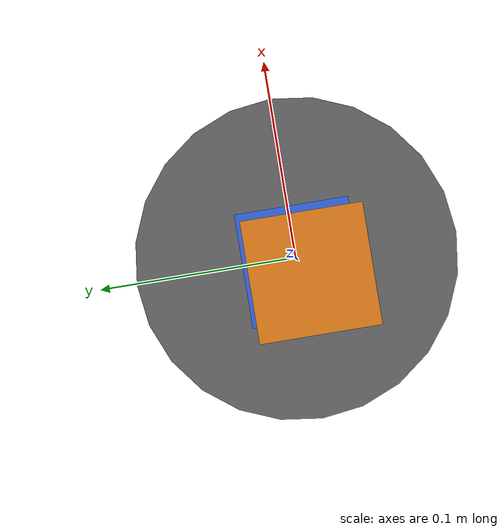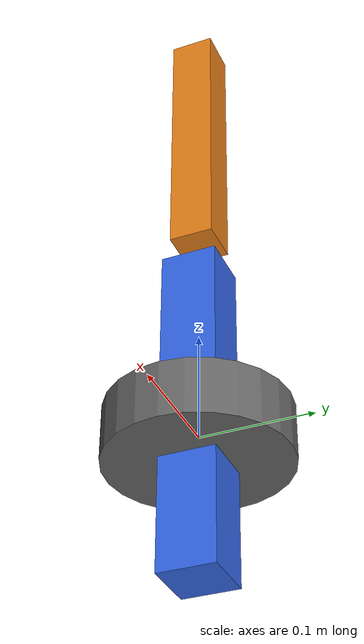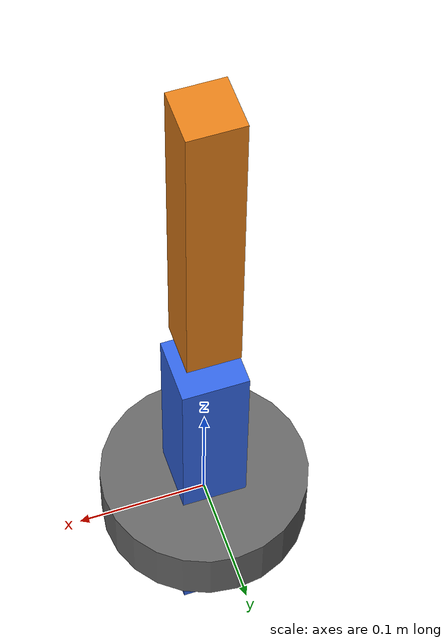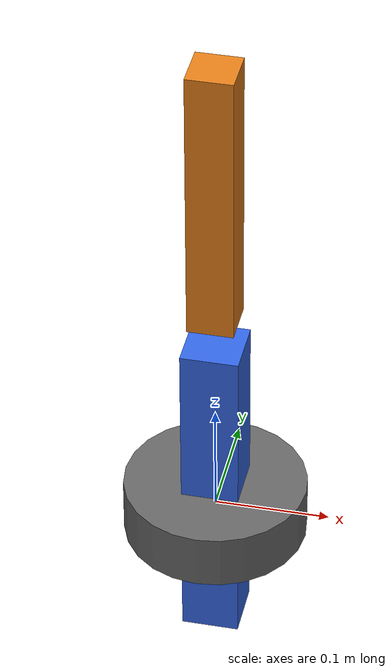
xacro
<?xml version="1.0"?>
<robot name="sample_arm" xmlns:xacro="http://www.ros.org/wiki/xacro">
  <link name="base_link">
    <visual>
      <origin xyz="0.0 0.0 0.0" rpy="0.0 0.0 0.0" />
      <geometry>
        <cylinder radius="0.08" length="0.05" />
      </geometry>
      <material name="base_grey">
        <color rgba="0.4 0.4 0.4 1.0" />
      </material>
    </visual>
    <collision>
      <origin xyz="0.0 0.0 0.0" rpy="0.0 0.0 0.0" />
      <geometry>
        <cylinder radius="0.08" length="0.05" />
      </geometry>
    </collision>
    <inertial>
      <origin xyz="0.0 0.0 0.0" rpy="0 0 0" />
      <mass value="1.5" />
      <inertia ixx="0.004" iyy="0.004" izz="0.006" ixy="0.0" ixz="0.0" iyz="0.0" />
    </inertial>
  </link>
  <link name="upper_arm">
    <visual>
      <origin xyz="0.0 0.0 0.0" rpy="0.0 0.0 0.0" />
      <geometry>
        <box size="0.05 0.05 0.3" />
      </geometry>
      <material name="arm_blue">
        <color rgba="0.2 0.4 0.9 1.0" />
      </material>
    </visual>
    <collision>
      <origin xyz="0.0 0.0 0.0" rpy="0.0 0.0 0.0" />
      <geometry>
        <box size="0.05 0.05 0.3" />
      </geometry>
    </collision>
    <inertial>
      <origin xyz="0.0 0.0 0.15" rpy="0 0 0" />
      <mass value="0.8" />
      <inertia ixx="0.006" iyy="0.006" izz="0.0007" ixy="0.0" ixz="0.0" iyz="0.0" />
    </inertial>
  </link>
  <link name="forearm">
    <visual>
      <origin xyz="0.0 0.0 0.0" rpy="0.0 0.0 0.0" />
      <geometry>
        <box size="0.04 0.04 0.25" />
      </geometry>
      <material name="arm_orange">
        <color rgba="0.9 0.5 0.1 1.0" />
      </material>
    </visual>
    <collision>
      <origin xyz="0.0 0.0 0.0" rpy="0.0 0.0 0.0" />
      <geometry>
        <box size="0.04 0.04 0.25" />
      </geometry>
    </collision>
    <inertial>
      <origin xyz="0.0 0.0 0.125" rpy="0 0 0" />
      <mass value="0.4" />
      <inertia ixx="0.002" iyy="0.002" izz="0.0003" ixy="0.0" ixz="0.0" iyz="0.0" />
    </inertial>
  </link>
  <joint name="shoulder_joint" type="revolute">
    <parent link="base_link" />
    <child link="upper_arm" />
    <origin xyz="0.0 0.0 0.025" rpy="0.0 0.0 0.0" />
    <axis xyz="0.0 0.0 1.0" />
    <limit lower="-3.14159265" upper="3.14159265" effort="20.0" velocity="2.0" />
  </joint>
  <joint name="elbow_joint" type="revolute">
    <parent link="upper_arm" />
    <child link="forearm" />
    <origin xyz="0.0 0.0 0.3" rpy="0.0 0.0 0.0" />
    <axis xyz="0.0 1.0 0.0" />
    <limit lower="-2.0" upper="2.0" effort="10.0" velocity="2.0" />
  </joint>
<ros2_control name="sample_arm" type="system">
  <hardware>
    <plugin>mock_components/GenericSystem</plugin>
  </hardware>
  <joint name="shoulder_joint">
    <command_interface name="position" />
    <state_interface name="position" />
    <state_interface name="velocity" />
    <state_interface name="effort" />
  </joint>
  <joint name="elbow_joint">
    <command_interface name="position" />
    <state_interface name="position" />
    <state_interface name="velocity" />
    <state_interface name="effort" />
  </joint>
</ros2_control></robot>
